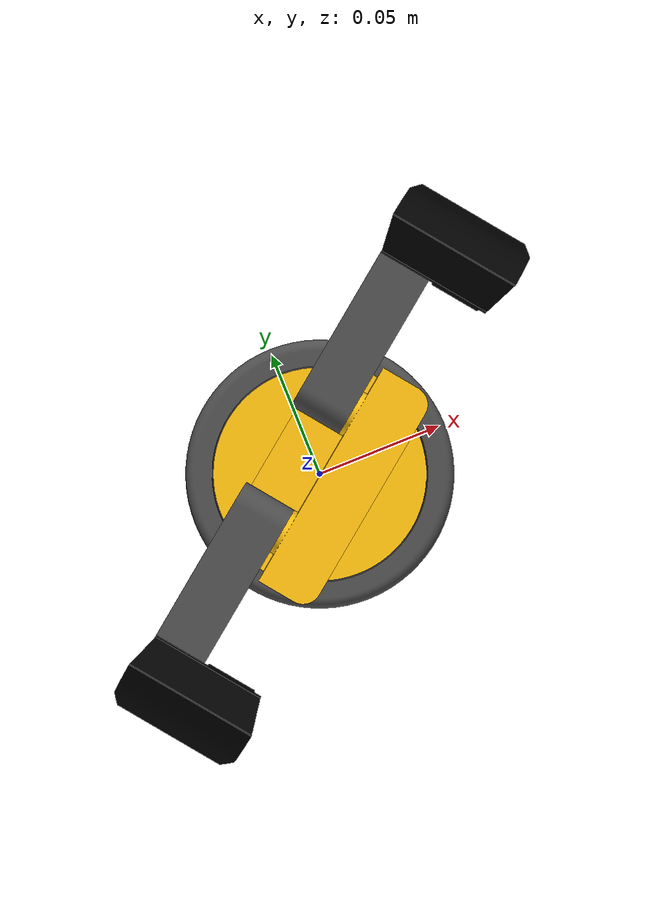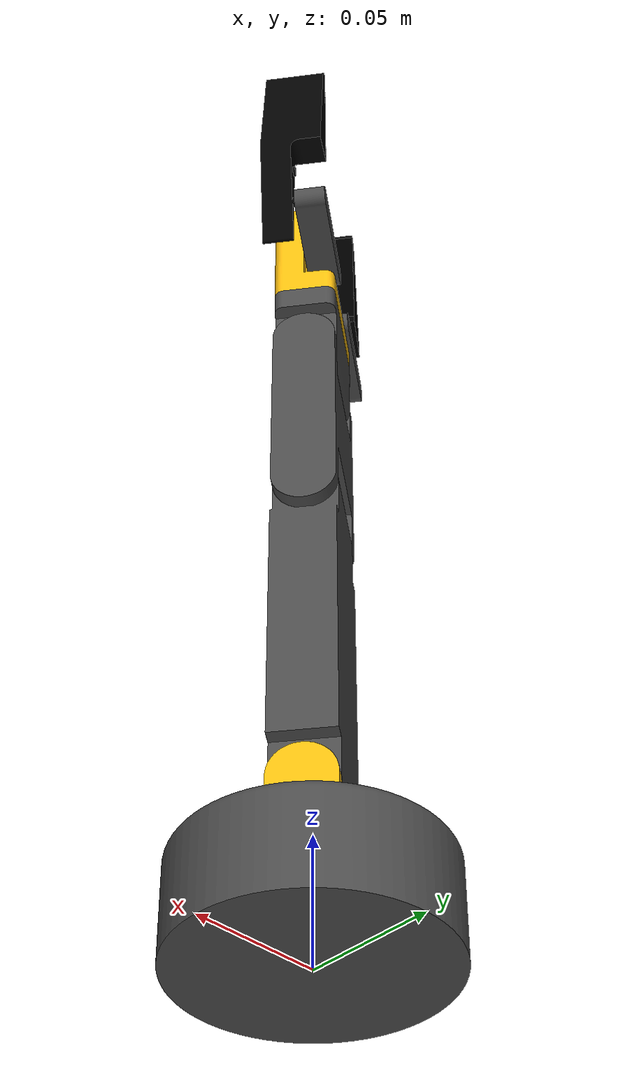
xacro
<?xml version="1.0" encoding="utf-8"?>
<robot name="roboticarm" xmlns:xacro="http://www.ros.org/wiki/xacro">

<xacro:include filename="$(find roboticarm)/urdf/robotic_arm.trans" />
<xacro:include filename="$(find roboticarm)/gazebo/robotic_arm_plugin.gazebo" />
<xacro:include filename="$(find roboticarm)/gazebo/robotic_arm_material.gazebo" />

	<link name="base_link">
		<visual>
			<origin xyz="0 -3.061616997868383172e-18 0" rpy="0 -0 0" />
			<geometry>
				<mesh filename="package://roboticarm/meshes/base_link.stl"/>
			</geometry>
			<material name="base_link_material">
				<color rgba="0.30196078431372547213 0.30196078431372547213 0.30196078431372547213 1.0"/>
			</material>
		</visual>
		<collision>
			<origin xyz="0 -3.061616997868383172e-18 0" rpy="0 -0 0" />
			<geometry>
				<mesh filename="package://roboticarm/meshes/base_link.stl"/>
			</geometry>
		</collision>
		<inertial>
			<origin xyz="-4.77602454739838088e-19 2.8958832140881536724e-19 0.015175471595513270046" rpy="0 0 0"/>
			<mass value="3" />
			<inertia ixx="0.00018726421194346999145" ixy="0"  ixz="0" iyy="0.00018726421194346996434" iyz="0" izz="0.00032582308981714611226" />
		</inertial>
	</link>

	<link name="world"/>

  	<joint name="base_joint" type="fixed">
    	<parent link="world"/>
    	<child link="base_link"/>
  	</joint>

	<link name="base_turner">
		<visual>
			<origin xyz="-7.7037197775489434122e-34 2.4186774283160218508e-18 0" rpy="3.141592653589793116 -5.800379948404883893e-33 -1.3509192585334677443e-17" />
			<geometry>
				<mesh filename="package://roboticarm/meshes/base_turner.stl"/>
			</geometry>
			<material name="base_turner_material">
				<color rgba="1 0.7568627450980391913 0.054901960784313724728 1.0"/>
			</material>
		</visual>
		<collision>
			<origin xyz="-7.7037197775489434122e-34 2.4186774283160218508e-18 0" rpy="3.141592653589793116 -5.800379948404883893e-33 -1.3509192585334677443e-17" />
			<geometry>
				<mesh filename="package://roboticarm/meshes/base_turner.stl"/>
			</geometry>
		</collision>
		<inertial>
			<origin xyz="5.5598844816443582794e-19 -7.3096836725023755308e-20 -0.011836196737248342453" rpy="0 0 0"/>
			<mass value="0.11175253124514644698" />
			<inertia ixx="5.3325975321601912216e-05" ixy="-3.51237260836306189e-21"  ixz="2.9491221638408872214e-37" iyy="4.9148080114317318112e-05" iyz="-7.423000914889311464e-37" izz="8.5450446950173191535e-05" />
		</inertial>
	</link>

	<link name="arm_link_1">
		<visual>
			<origin xyz="-0.067499999999999990563 -0.012499999999999998959 -0.020000000000000003886" rpy="-1.570796326794896558 6.130702097240767706e-32 1.8754939557164924181e-32" />
			<geometry>
				<mesh filename="package://roboticarm/meshes/arm_link_1.stl"/>
			</geometry>
			<material name="arm_link_1_material">
				<color rgba="0.30196078431372547213 0.30196078431372547213 0.30196078431372547213 1.0"/>
			</material>
		</visual>
		<collision>
			<origin xyz="-0.067499999999999990563 -0.012499999999999998959 -0.020000000000000003886" rpy="-1.570796326794896558 6.130702097240767706e-32 1.8754939557164924181e-32" />
			<geometry>
				<mesh filename="package://roboticarm/meshes/arm_link_1.stl"/>
			</geometry>
		</collision>
		<inertial>
			<origin xyz="-0.067499999999999990563 3.4694469519536141888e-18 -0.020000000000000003886" rpy="0 0 0"/>
			<mass value="0.19423597169735287715" />
			<inertia ixx="4.8327548454074900576e-05" ixy="-6.9446664856317125743e-35"  ixz="-2.4864144440056784073e-34" iyy="0.00039018731950013892064" iyz="5.3946359155359762351e-20" izz="0.00036155476883491954486" />
		</inertial>
	</link>

	<link name="arm_link_2">
		<visual>
			<origin xyz="0.037500000000000005551 0.012500000000000002429 0.020000000000000003886" rpy="1.570796326794896558 -7.5241556983153562095e-31 1.0595692243082160377e-30" />
			<geometry>
				<mesh filename="package://roboticarm/meshes/arm_link_2.stl"/>
			</geometry>
			<material name="arm_link_2_material">
				<color rgba="0.30196078431372547213 0.30196078431372547213 0.30196078431372547213 1.0"/>
			</material>
		</visual>
		<collision>
			<origin xyz="0.037500000000000005551 0.012500000000000002429 0.020000000000000003886" rpy="1.570796326794896558 -7.5241556983153562095e-31 1.0595692243082160377e-30" />
			<geometry>
				<mesh filename="package://roboticarm/meshes/arm_link_2.stl"/>
			</geometry>
		</collision>
		<inertial>
			<origin xyz="0.037500000000000005551 3.4694469519536141888e-18 0.020000000000000000416" rpy="0 0 0"/>
			<mass value="0.07194679150920589572" />
			<inertia ixx="2.5166341084559216539e-05" ixy="3.7622670286868157678e-35"  ixz="-1.2087949772368430078e-35" iyy="4.9627704144379981355e-05" iyz="1.1025791277465072059e-21" izz="3.1794445729810808963e-05" />
		</inertial>
	</link>

	<link name="arm_link_3">
		<visual>
			<origin xyz="-0.027499999999999968914 -0.012500000000000005898 -0.020000000000000003886" rpy="-1.570796326794896558 -2.3152124483107459371e-16 6.5453902926940862579e-19" />
			<geometry>
				<mesh filename="package://roboticarm/meshes/arm_link_3.stl"/>
			</geometry>
			<material name="arm_link_3_material">
				<color rgba="0.30196078431372547213 0.30196078431372547213 0.30196078431372547213 1.0"/>
			</material>
		</visual>
		<collision>
			<origin xyz="-0.027499999999999968914 -0.012500000000000005898 -0.020000000000000003886" rpy="-1.570796326794896558 -2.3152124483107459371e-16 6.5453902926940862579e-19" />
			<geometry>
				<mesh filename="package://roboticarm/meshes/arm_link_3.stl"/>
			</geometry>
		</collision>
		<inertial>
			<origin xyz="-0.0097175241114590311942 -5.2041704279304212832e-18 -0.020000000000000000416" rpy="0 0 0"/>
			<mass value="0.04226949872412866932" />
			<inertia ixx="8.8772705670113749847e-06" ixy="6.3353906976273155615e-24"  ixz="3.6184562640890746835e-22" iyy="1.207659487483980475e-05" iyz="9.4802366371568496679e-22" izz="7.3093991557627407388e-06" />
		</inertial>
	</link>

	<link name="gripper_link_1">
		<visual>
			<origin xyz="9.3637472505942627797e-19 -0.012500000000000002429 -0.010000000000000008882" rpy="-1.570796326794896558 -1.570796326794896558 0" />
			<geometry>
				<mesh filename="package://roboticarm/meshes/gripper_link_1.stl"/>
			</geometry>
			<material name="gripper_link_1_material">
				<color rgba="1 0.7568627450980391913 0.054901960784313724728 1.0"/>
			</material>
		</visual>
		<collision>
			<origin xyz="9.3637472505942627797e-19 -0.012500000000000002429 -0.010000000000000008882" rpy="-1.570796326794896558 -1.570796326794896558 0" />
			<geometry>
				<mesh filename="package://roboticarm/meshes/gripper_link_1.stl"/>
			</geometry>
		</collision>
		<inertial>
			<origin xyz="-1.0976713691985615328e-18 -0.0040911575964131894484 -0.021733963606431462579" rpy="0 0 0"/>
			<mass value="0.040925034173514361624" />
			<inertia ixx="1.0810540744199395447e-05" ixy="2.8828905549150451188e-22"  ixz="2.3222399272774074034e-23" iyy="1.8465109477521547834e-05" iyz="-1.3839887922842312286e-06" izz="1.044129563656239275e-05" />
		</inertial>
	</link>

	<link name="gripper_link_2">
		<visual>
			<origin xyz="-0.019999999999999993477 -5.5511151231257827021e-17 -0.012500000000000000694" rpy="-2.8764607763481055775e-19 5.6852052070389681062e-17 3.5645252572563450608e-20" />
			<geometry>
				<mesh filename="package://roboticarm/meshes/gripper_link_2.stl"/>
			</geometry>
			<material name="gripper_link_2_material">
				<color rgba="0.30196078431372547213 0.30196078431372547213 0.30196078431372547213 1.0"/>
		</material>
		</visual>
		<collision>
			<origin xyz="-0.019999999999999993477 -5.5511151231257827021e-17 -0.012500000000000000694" rpy="-2.8764607763481055775e-19 5.6852052070389681062e-17 3.5645252572563450608e-20" />
			<geometry>
				<mesh filename="package://roboticarm/meshes/gripper_link_2.stl"/>
			</geometry>
		</collision>
		<inertial>
			<origin xyz="-0.019999999999999993477 -5.4406557546316011089e-17 -0.0062500000000000003469" rpy="0 0 0"/>
			<mass value="0.0062927985848676443875" />
			<inertia ixx="1.3222580606255356181e-07" ixy="-9.7906578846323247586e-27"  ixz="-5.3912387417026485794e-24" iyy="1.2905119066762784755e-06" iyz="-1.4051411248442962889e-25" izz="1.2588627495912370477e-06" />
		</inertial>
	</link>

	<link name="gripper_link_3">
		<visual>
			<origin xyz="0.030000000000000026645 -0.0030000000000000026645 -0.013500000000000003317" rpy="2.7895758333200453872e-17 -1.9176045572885558621e-19 5.9914972313653386157e-19" />
			<geometry>
				<mesh filename="package://roboticarm/meshes/gripper_link_3.stl"/>
			</geometry>
			<material name="gripper_link_3_material">
				<color rgba="0 0 0 1.0"/>
			</material>
		</visual>
		<collision>
			<origin xyz="0.030000000000000026645 -0.0030000000000000026645 -0.013500000000000003317" rpy="2.7895758333200453872e-17 -1.9176045572885558621e-19 5.9914972313653386157e-19" />
			<geometry>
				<mesh filename="package://roboticarm/meshes/gripper_link_3.stl"/>
			</geometry>
		</collision>
		<inertial>
			<origin xyz="0.047860279909926396746 -0.001816675545418268943 -0.0023582232389542500534" rpy="0 0 0"/>
			<mass value="0.022194922914096641003" />
			<inertia ixx="1.4659648868937333891e-06" ixy="1.0083147605711552851e-06"  ixz="-1.0394543711540078819e-06" iyy="1.4282656004211426759e-05" iyz="7.2086988985399456882e-08" izz="1.352743129292048836e-05" />
		</inertial>
	</link>

	<joint name="joint8" type="revolute">
		<origin xyz="-0.040000000000000021649 -5.5511151231257827021e-17 3.1008182133085426813e-17" rpy="3.1415926535897926719 -4.8509407399613398583e-16 -1.570796326794896558" />
		<parent link="gripper_link_2" />
		<child link="gripper_link_3" />
		<axis xyz="0 0 1"/>
		<limit lower="-1.57" upper="1.57" effort="100" velocity="1" />
	</joint>

	<joint name="joint6" type="revolute">
		<origin xyz="-0.014999999999999992506 0.0009999999999999993703 -0.019999999999999962252" rpy="1.570796326794896558 2.3228524371245603311e-14 -5.549460142490254044e-15" />
		<parent link="gripper_link_1" />
		<child link="gripper_link_2" />
		<axis xyz="0 0 1"/>
		<limit lower="-1.57" upper="1.57" effort="100" velocity="1" />
	</joint>

	<link name="gripper_link_4">
		<visual>
			<origin xyz="-0.020000000000000003886 0 -0.01249999999999999549" rpy="-1.8231828477160622874e-19 4.5024695016245069465e-17 -3.467885654086683229e-20" />
			<geometry>
				<mesh filename="package://roboticarm/meshes/gripper_link_2.stl"/>
			</geometry>
			<material name="gripper_link_2_material">
				<color rgba="0.30196078431372547213 0.30196078431372547213 0.30196078431372547213 1.0"/>
			</material>
		</visual>
		<collision>
			<origin xyz="-0.020000000000000003886 0 -0.01249999999999999549" rpy="-1.8231828477160622874e-19 4.5024695016245069465e-17 -3.467885654086683229e-20" />
			<geometry>
				<mesh filename="package://roboticarm/meshes/gripper_link_2.stl"/>
			</geometry>
		</collision>
		<inertial>
			<origin xyz="-0.020000000000000003886 1.100314120621160295e-18 -0.0062499999999999960101" rpy="0 0 0"/>
			<mass value="0.0062927985848676443875" />
			<inertia ixx="1.3222580606255356181e-07" ixy="-8.6152837385181148545e-25"  ixz="1.2181938944416348235e-22" iyy="1.290511906676278899e-06" iyz="-8.6656879893052597773e-25" izz="1.2588627495912366242e-06" />
		</inertial>
	</link>

	<link name="gripper_link_5">
		<visual>
			<origin xyz="0.030000000000000026645 0.0030000000000000026645 -0.00099999999999999915345" rpy="-3.141592653589793116 -3.5474759767231887989e-19 1.5061988724684013876e-19" />
			<geometry>
				<mesh filename="package://roboticarm/meshes/gripper_link_4.stl"/>
			</geometry>
			<material name="gripper_link_5_material">
				<color rgba="0 0 0 1.0"/>
			</material>
		</visual>
		<collision>
			<origin xyz="0.030000000000000026645 0.0030000000000000026645 -0.00099999999999999915345" rpy="-3.141592653589793116 -3.5474759767231887989e-19 1.5061988724684013876e-19" />
			<geometry>
				<mesh filename="package://roboticarm/meshes/gripper_link_4.stl"/>
			</geometry>
		</collision>
		<inertial>
			<origin xyz="0.047860326624455253042 0.001816665599035939202 -0.0023582303108284153118" rpy="0 0 0"/>
			<mass value="0.022194831460484187174" />
			<inertia ixx="1.4659634959644516769e-06" ixy="-1.0083188819202595108e-06"  ixz="-1.0394569788917439664e-06" iyy="1.4282644167872394038e-05" iyz="-7.2087021777091397614e-08" izz="1.3527421699463345985e-05" />
		</inertial>
	</link>

	<joint name="joint9" type="revolute">
		<origin xyz="-0.040000000000000000833 -1.1102230246251565404e-16 1.8865117801247777152e-17" rpy="-3.1415926535897926719 1.2875113902521724409e-15 1.57079632679489678" />
		<parent link="gripper_link_4" />
		<child link="gripper_link_5" />
		<axis xyz="0 0 1"/>
		<limit lower="-1.57" upper="1.57" effort="100" velocity="1" />
	</joint>

	<joint name="joint7" type="revolute">
		<origin xyz="0.015000000000000004649 0.00099999999999999698505 -0.020000000000000017764" rpy="-1.570796326794896558 2.9211766417202967469e-14 3.1415926535897877869" />
		<parent link="gripper_link_1" />
		<child link="gripper_link_4" />
		<axis xyz="0 0 1"/>
		<limit lower="-1.57" upper="1.57" effort="100" velocity="1" />
	</joint>

	<joint name="joint5" type="revolute">
		<origin xyz="-0.027500000000000024425 -8.2399365108898336985e-18 -0.020000000000000003886" rpy="3.141592653589793116 -1.5707963267948856778 0" />
		<parent link="arm_link_3" />
		<child link="gripper_link_1" />
		<axis xyz="0 0 1"/>
		<limit lower="-3.14" upper="3.14" effort="100" velocity="1" />
	</joint>

	<joint name="joint4" type="revolute">
		<origin xyz="0.075000000000000011102 2.1063240052122997717e-18 6.9388939039072283776e-18" rpy="-3.1415926535897926719 -2.4281616861104182506e-16 -3.1380330806969403135" />
		<parent link="arm_link_2" />
		<child link="arm_link_3" />
		<axis xyz="0 0 1"/>
		<limit lower="-1.7" upper="1.7" effort="100" velocity="1" />
	</joint>

	<joint name="joint3" type="revolute">
		<origin xyz="-0.13500000000000000888 3.0655396205876302604e-18 -0.040000000000000007772" rpy="1.566141830090408893e-15 2.5180549917200211291e-15 3.1415926535897868987" />
		<parent link="arm_link_1" />
		<child link="arm_link_2" />
		<axis xyz="0 0 1"/>
		<limit lower="-1.7" upper="1.7" effort="100" velocity="1" />
	</joint>

	<joint name="joint2" type="revolute">
		<origin xyz="1.7370716832809142268e-18 -0.020000000000000007355 -0.037500000000000005551" rpy="1.5707963267948956698 -1.5707963267948943376 0" />
		<parent link="base_turner" />
		<child link="arm_link_1" />
		<axis xyz="0 0 1"/>
		<limit lower="-1.57" upper="1.57" effort="100" velocity="1" />
	</joint>

	<joint name="joint1" type="revolute">
		<origin xyz="7.3266230497424844212e-18 5.6144109730709618633e-19 0.020000000000000055927" rpy="-3.141592653589793116 -2.0000188391028945031e-17 -0.91339895386326697135" />
		<parent link="base_link" />
		<child link="base_turner" />
		<axis xyz="0 0 1"/>
		<limit lower="-3.14" upper="3.14" effort="100" velocity="1" />
	</joint>
</robot>

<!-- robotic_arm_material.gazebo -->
<robot name="roboticarm" xmlns:xacro="http://www.ros.org/wiki/xacro" >

    <xacro:property name="grey_color" value="Gazebo/Grey" />
    <xacro:property name="yellow_color" value="Gazebo/Yellow" />
    <xacro:property name="black_color" value="Gazebo/Black" />

    <gazebo reference="base_link">
        <material>${grey_color}</material>
    </gazebo>

    <gazebo reference="base_turner">
        <material>${yellow_color}</material>
    </gazebo>

    <gazebo reference="arm_link_1">
        <material>${grey_color}</material>
    </gazebo>

    <gazebo reference="arm_link_2">
        <material>${grey_color}</material>
    </gazebo>

    <gazebo reference="arm_link_3">
        <material>${grey_color}</material>
    </gazebo>

    <gazebo reference="gripper_link_1">
        <material>${yellow_color}</material>
    </gazebo>

    <gazebo reference="gripper_link_2">
        <material>${grey_color}</material>
    </gazebo>

    <gazebo reference="gripper_link_4">
        <material>${grey_color}</material>
    </gazebo>

    <gazebo reference="gripper_link_3">
        <material>${black_color}</material>
    </gazebo>

    <gazebo reference="gripper_link_5">
        <material>${black_color}</material>
    </gazebo>

</robot>
